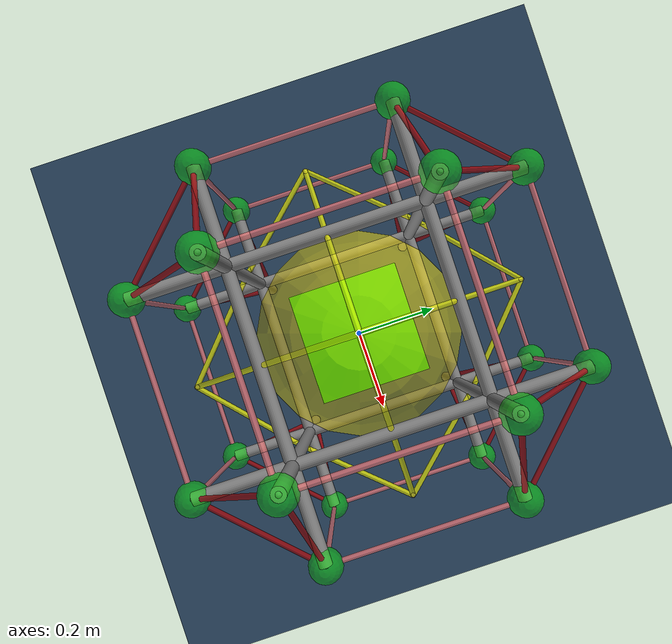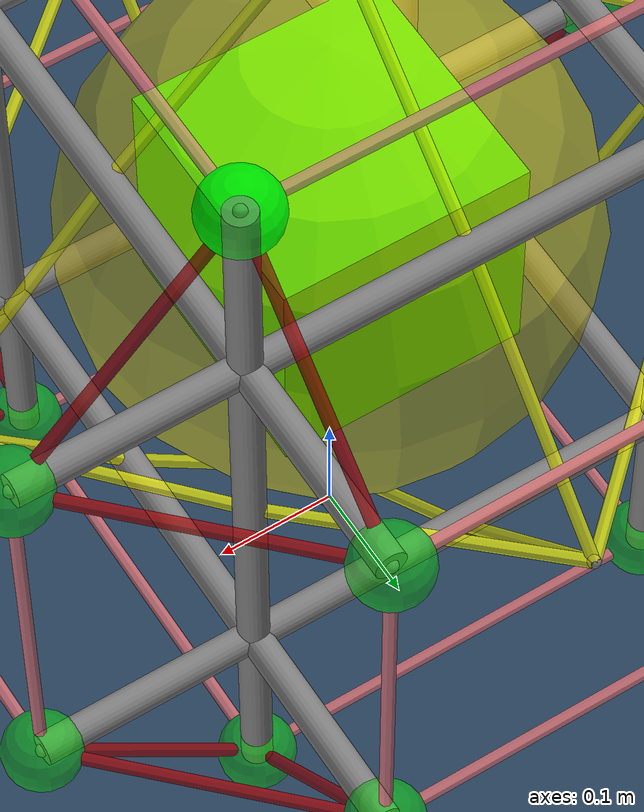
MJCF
<?xml version='1.0' encoding='utf-8'?>
<mujoco model="TT12_environment">
  <compiler autolimits="true" coordinate="local" angle="degree" inertiafromgeom="true" />
  <option timestep="1e-05" gravity="0 0 -10" integrator="Euler">
    <flag override="disable" energy="enable" />
  </option>
  <visual>
    <headlight ambient="0.59999999999999998 0.59999999999999998 0.59999999999999998" diffuse="0.29999999999999999 0.29999999999999999 0.29999999999999999" specular="0.10000000000000001 0.10000000000000001 0.10000000000000001" />
  </visual>
  <default>
    <default class="/">
      <joint type="hinge" damping="0" />
      <geom type="capsule" />
      <site type="sphere" size="0.01" />
      <tendon limited="true" range="0 10" width="0.0050000000000000001" rgba="1 0 0 1" damping="10" />
    </default>
    <default class="tt_model_0/">
      <tendon limited="true" range="0 10" width="0.0050000000000000001" rgba="1 0 0 1" damping="10" />
    </default>
    <default class="tt_model_0/rod0_1/" />
    <default class="tt_model_0/rod2_3/" />
    <default class="tt_model_0/rod4_5/" />
    <default class="tt_model_0/rod6_7/" />
    <default class="tt_model_0/rod8_9/" />
    <default class="tt_model_0/rod10_11/" />
    <default class="tt_model_0/rod12_13/" />
    <default class="tt_model_0/rod14_15/" />
    <default class="tt_model_0/rod16_17/" />
    <default class="tt_model_0/rod18_19/" />
    <default class="tt_model_0/rod20_21/" />
    <default class="tt_model_0/rod22_23/" />
    <default class="tt_model_0/middle_platform/" />
  </default>
  <asset>
    <texture name="skybox" type="skybox" builtin="gradient" rgb1="0.29999999999999999 0.5 0.69999999999999996" rgb2="0 0 0" width="512" height="3072" />
    <texture name="2d" type="2d" builtin="checker" rgb1="0.20000000000000001 0.29999999999999999 0.40000000000000002" rgb2="0.10000000000000001 0.20000000000000001 0.29999999999999999" width="300" height="300" />
    <material name="grid" class="/" texture="2d" texrepeat="5 5" reflectance="0.20000000000000001" />
  </asset>
  <worldbody>
    <geom name="floor" class="/" type="plane" condim="6" priority="1" size="0 0 0.125" material="grid" friction="0.5 0.0050000000000000001 0.0001" solref="-5773.1000000000004 -68.760000000000005" solimp="0.26900000000000002 0.070999999999999994 0.065000000000000002 0.5 2" pos="0 0 0" />
    <light name="light_-2" class="/" pos="-2 -1 3" dir="2 1 -2" />
    <light name="light_2" class="/" pos="2 -1 3" dir="-2 1 -2" />
    <site name="world_site" class="/" pos="0 0 0" />
    <site name="tt_model_0/middle_site_0_1" class="tt_model_0/" rgba="0 0 0 0" pos="0.17499999999999999 0.17499999999999999 0.38" />
    <body pos="0.17499999999999999 0.17499999999999999 0.38" name="tt_model_0/rod0_1/">
      <freejoint name="tt_model_0/rod0_1/" />
      <geom name="tt_model_0/rod0_1/geom0_1" class="tt_model_0/rod0_1/" type="cylinder" size="0.012" mass="0.022499999999999999" fromto="0 0 0.34999999999999998 0 0 -0.34999999999999998" />
      <site name="tt_model_0/rod0_1/node_0" class="tt_model_0/rod0_1/" pos="0 0 0.34999999999999998" />
      <site name="tt_model_0/rod0_1/node_1" class="tt_model_0/rod0_1/" pos="0 0 -0.34999999999999998" />
      <site name="tt_model_0/rod0_1/node_24" class="tt_model_0/rod0_1/" pos="0 0 0" />
      <geom name="tt_model_0/rod0_1/geom_edge_0" class="tt_model_0/rod0_1/" type="sphere" condim="6" size="0.029999999999999999" rgba="0 0.90000000000000002 0 0.5" mass="0.011299999999999999" pos="0 0 0.34999999999999998" />
      <geom name="tt_model_0/rod0_1/geom_edge_1" class="tt_model_0/rod0_1/" type="sphere" condim="6" size="0.029999999999999999" rgba="0 0.90000000000000002 0 0.5" mass="0.011299999999999999" pos="0 0 -0.34999999999999998" />
    </body>
    <site name="tt_model_0/middle_site_2_3" class="tt_model_0/" rgba="0 0 0 0" pos="-0.17499999999999999 0.17499999999999999 0.38" />
    <body pos="-0.17499999999999999 0.17499999999999999 0.38" name="tt_model_0/rod2_3/">
      <freejoint name="tt_model_0/rod2_3/" />
      <geom name="tt_model_0/rod2_3/geom2_3" class="tt_model_0/rod2_3/" type="cylinder" size="0.012" mass="0.022499999999999999" fromto="0 0 0.34999999999999998 0 0 -0.34999999999999998" />
      <site name="tt_model_0/rod2_3/node_2" class="tt_model_0/rod2_3/" pos="0 0 0.34999999999999998" />
      <site name="tt_model_0/rod2_3/node_3" class="tt_model_0/rod2_3/" pos="0 0 -0.34999999999999998" />
      <site name="tt_model_0/rod2_3/node_25" class="tt_model_0/rod2_3/" pos="0 0 0" />
      <geom name="tt_model_0/rod2_3/geom_edge_2" class="tt_model_0/rod2_3/" type="sphere" condim="6" size="0.029999999999999999" rgba="0 0.90000000000000002 0 0.5" mass="0.011299999999999999" pos="0 0 0.34999999999999998" />
      <geom name="tt_model_0/rod2_3/geom_edge_3" class="tt_model_0/rod2_3/" type="sphere" condim="6" size="0.029999999999999999" rgba="0 0.90000000000000002 0 0.5" mass="0.011299999999999999" pos="0 0 -0.34999999999999998" />
    </body>
    <site name="tt_model_0/middle_site_4_5" class="tt_model_0/" rgba="0 0 0 0" pos="-0.17499999999999999 -0.17499999999999999 0.38" />
    <body pos="-0.17499999999999999 -0.17499999999999999 0.38" name="tt_model_0/rod4_5/">
      <freejoint name="tt_model_0/rod4_5/" />
      <geom name="tt_model_0/rod4_5/geom4_5" class="tt_model_0/rod4_5/" type="cylinder" size="0.012" mass="0.022499999999999999" fromto="0 0 0.34999999999999998 0 0 -0.34999999999999998" />
      <site name="tt_model_0/rod4_5/node_4" class="tt_model_0/rod4_5/" pos="0 0 0.34999999999999998" />
      <site name="tt_model_0/rod4_5/node_5" class="tt_model_0/rod4_5/" pos="0 0 -0.34999999999999998" />
      <site name="tt_model_0/rod4_5/node_26" class="tt_model_0/rod4_5/" pos="0 0 0" />
      <geom name="tt_model_0/rod4_5/geom_edge_4" class="tt_model_0/rod4_5/" type="sphere" condim="6" size="0.029999999999999999" rgba="0 0.90000000000000002 0 0.5" mass="0.011299999999999999" pos="0 0 0.34999999999999998" />
      <geom name="tt_model_0/rod4_5/geom_edge_5" class="tt_model_0/rod4_5/" type="sphere" condim="6" size="0.029999999999999999" rgba="0 0.90000000000000002 0 0.5" mass="0.011299999999999999" pos="0 0 -0.34999999999999998" />
    </body>
    <site name="tt_model_0/middle_site_6_7" class="tt_model_0/" rgba="0 0 0 0" pos="0.17499999999999999 -0.17499999999999999 0.38" />
    <body pos="0.17499999999999999 -0.17499999999999999 0.38" name="tt_model_0/rod6_7/">
      <freejoint name="tt_model_0/rod6_7/" />
      <geom name="tt_model_0/rod6_7/geom6_7" class="tt_model_0/rod6_7/" type="cylinder" size="0.012" mass="0.022499999999999999" fromto="0 0 0.34999999999999998 0 0 -0.34999999999999998" />
      <site name="tt_model_0/rod6_7/node_6" class="tt_model_0/rod6_7/" pos="0 0 0.34999999999999998" />
      <site name="tt_model_0/rod6_7/node_7" class="tt_model_0/rod6_7/" pos="0 0 -0.34999999999999998" />
      <site name="tt_model_0/rod6_7/node_27" class="tt_model_0/rod6_7/" pos="0 0 0" />
      <geom name="tt_model_0/rod6_7/geom_edge_6" class="tt_model_0/rod6_7/" type="sphere" condim="6" size="0.029999999999999999" rgba="0 0.90000000000000002 0 0.5" mass="0.011299999999999999" pos="0 0 0.34999999999999998" />
      <geom name="tt_model_0/rod6_7/geom_edge_7" class="tt_model_0/rod6_7/" type="sphere" condim="6" size="0.029999999999999999" rgba="0 0.90000000000000002 0 0.5" mass="0.011299999999999999" pos="0 0 -0.34999999999999998" />
    </body>
    <site name="tt_model_0/middle_site_8_9" class="tt_model_0/" rgba="0 0 0 0" pos="0.17499999999999999 0 0.55499999999999994" />
    <body pos="0.17499999999999999 0 0.55499999999999994" name="tt_model_0/rod8_9/">
      <freejoint name="tt_model_0/rod8_9/" />
      <geom name="tt_model_0/rod8_9/geom8_9" class="tt_model_0/rod8_9/" type="cylinder" size="0.012" mass="0.022499999999999999" fromto="0 0.34999999999999998 0 0 -0.34999999999999998 0" />
      <site name="tt_model_0/rod8_9/node_8" class="tt_model_0/rod8_9/" pos="0 0.34999999999999998 0" />
      <site name="tt_model_0/rod8_9/node_9" class="tt_model_0/rod8_9/" pos="0 -0.34999999999999998 0" />
      <site name="tt_model_0/rod8_9/node_28" class="tt_model_0/rod8_9/" pos="0 0 0" />
      <geom name="tt_model_0/rod8_9/geom_edge_8" class="tt_model_0/rod8_9/" type="sphere" condim="6" size="0.029999999999999999" rgba="0 0.90000000000000002 0 0.5" mass="0.011299999999999999" pos="0 0.34999999999999998 0" />
      <geom name="tt_model_0/rod8_9/geom_edge_9" class="tt_model_0/rod8_9/" type="sphere" condim="6" size="0.029999999999999999" rgba="0 0.90000000000000002 0 0.5" mass="0.011299999999999999" pos="0 -0.34999999999999998 0" />
    </body>
    <site name="tt_model_0/middle_site_10_11" class="tt_model_0/" rgba="0 0 0 0" pos="0.17499999999999999 0 0.20500000000000002" />
    <body pos="0.17499999999999999 0 0.20500000000000002" name="tt_model_0/rod10_11/">
      <freejoint name="tt_model_0/rod10_11/" />
      <geom name="tt_model_0/rod10_11/geom10_11" class="tt_model_0/rod10_11/" type="cylinder" size="0.012" mass="0.022499999999999999" fromto="0 0.34999999999999998 0 0 -0.34999999999999998 0" />
      <site name="tt_model_0/rod10_11/node_10" class="tt_model_0/rod10_11/" pos="0 0.34999999999999998 0" />
      <site name="tt_model_0/rod10_11/node_11" class="tt_model_0/rod10_11/" pos="0 -0.34999999999999998 0" />
      <site name="tt_model_0/rod10_11/node_29" class="tt_model_0/rod10_11/" pos="0 0 0" />
      <geom name="tt_model_0/rod10_11/geom_edge_10" class="tt_model_0/rod10_11/" type="sphere" condim="6" size="0.029999999999999999" rgba="0 0.90000000000000002 0 0.5" mass="0.011299999999999999" pos="0 0.34999999999999998 0" />
      <geom name="tt_model_0/rod10_11/geom_edge_11" class="tt_model_0/rod10_11/" type="sphere" condim="6" size="0.029999999999999999" rgba="0 0.90000000000000002 0 0.5" mass="0.011299999999999999" pos="0 -0.34999999999999998 0" />
    </body>
    <site name="tt_model_0/middle_site_12_13" class="tt_model_0/" rgba="0 0 0 0" pos="-0.17499999999999999 0 0.20500000000000002" />
    <body pos="-0.17499999999999999 0 0.20500000000000002" name="tt_model_0/rod12_13/">
      <freejoint name="tt_model_0/rod12_13/" />
      <geom name="tt_model_0/rod12_13/geom12_13" class="tt_model_0/rod12_13/" type="cylinder" size="0.012" mass="0.022499999999999999" fromto="0 0.34999999999999998 0 0 -0.34999999999999998 0" />
      <site name="tt_model_0/rod12_13/node_12" class="tt_model_0/rod12_13/" pos="0 0.34999999999999998 0" />
      <site name="tt_model_0/rod12_13/node_13" class="tt_model_0/rod12_13/" pos="0 -0.34999999999999998 0" />
      <site name="tt_model_0/rod12_13/node_30" class="tt_model_0/rod12_13/" pos="0 0 0" />
      <geom name="tt_model_0/rod12_13/geom_edge_12" class="tt_model_0/rod12_13/" type="sphere" condim="6" size="0.029999999999999999" rgba="0 0.90000000000000002 0 0.5" mass="0.011299999999999999" pos="0 0.34999999999999998 0" />
      <geom name="tt_model_0/rod12_13/geom_edge_13" class="tt_model_0/rod12_13/" type="sphere" condim="6" size="0.029999999999999999" rgba="0 0.90000000000000002 0 0.5" mass="0.011299999999999999" pos="0 -0.34999999999999998 0" />
    </body>
    <site name="tt_model_0/middle_site_14_15" class="tt_model_0/" rgba="0 0 0 0" pos="-0.17499999999999999 0 0.55499999999999994" />
    <body pos="-0.17499999999999999 0 0.55499999999999994" name="tt_model_0/rod14_15/">
      <freejoint name="tt_model_0/rod14_15/" />
      <geom name="tt_model_0/rod14_15/geom14_15" class="tt_model_0/rod14_15/" type="cylinder" size="0.012" mass="0.022499999999999999" fromto="0 0.34999999999999998 0 0 -0.34999999999999998 0" />
      <site name="tt_model_0/rod14_15/node_14" class="tt_model_0/rod14_15/" pos="0 0.34999999999999998 0" />
      <site name="tt_model_0/rod14_15/node_15" class="tt_model_0/rod14_15/" pos="0 -0.34999999999999998 0" />
      <site name="tt_model_0/rod14_15/node_31" class="tt_model_0/rod14_15/" pos="0 0 0" />
      <geom name="tt_model_0/rod14_15/geom_edge_14" class="tt_model_0/rod14_15/" type="sphere" condim="6" size="0.029999999999999999" rgba="0 0.90000000000000002 0 0.5" mass="0.011299999999999999" pos="0 0.34999999999999998 0" />
      <geom name="tt_model_0/rod14_15/geom_edge_15" class="tt_model_0/rod14_15/" type="sphere" condim="6" size="0.029999999999999999" rgba="0 0.90000000000000002 0 0.5" mass="0.011299999999999999" pos="0 -0.34999999999999998 0" />
    </body>
    <site name="tt_model_0/middle_site_16_17" class="tt_model_0/" rgba="0 0 0 0" pos="0 0.17499999999999999 0.55499999999999994" />
    <body pos="0 0.17499999999999999 0.55499999999999994" name="tt_model_0/rod16_17/">
      <freejoint name="tt_model_0/rod16_17/" />
      <geom name="tt_model_0/rod16_17/geom16_17" class="tt_model_0/rod16_17/" type="cylinder" size="0.012" mass="0.022499999999999999" fromto="0.34999999999999998 0 0 -0.34999999999999998 0 0" />
      <site name="tt_model_0/rod16_17/node_16" class="tt_model_0/rod16_17/" pos="0.34999999999999998 0 0" />
      <site name="tt_model_0/rod16_17/node_17" class="tt_model_0/rod16_17/" pos="-0.34999999999999998 0 0" />
      <site name="tt_model_0/rod16_17/node_32" class="tt_model_0/rod16_17/" pos="0 0 0" />
      <geom name="tt_model_0/rod16_17/geom_edge_16" class="tt_model_0/rod16_17/" type="sphere" condim="6" size="0.029999999999999999" rgba="0 0.90000000000000002 0 0.5" mass="0.011299999999999999" pos="0.34999999999999998 0 0" />
      <geom name="tt_model_0/rod16_17/geom_edge_17" class="tt_model_0/rod16_17/" type="sphere" condim="6" size="0.029999999999999999" rgba="0 0.90000000000000002 0 0.5" mass="0.011299999999999999" pos="-0.34999999999999998 0 0" />
    </body>
    <site name="tt_model_0/middle_site_18_19" class="tt_model_0/" rgba="0 0 0 0" pos="0 -0.17499999999999999 0.55499999999999994" />
    <body pos="0 -0.17499999999999999 0.55499999999999994" name="tt_model_0/rod18_19/">
      <freejoint name="tt_model_0/rod18_19/" />
      <geom name="tt_model_0/rod18_19/geom18_19" class="tt_model_0/rod18_19/" type="cylinder" size="0.012" mass="0.022499999999999999" fromto="0.34999999999999998 0 0 -0.34999999999999998 0 0" />
      <site name="tt_model_0/rod18_19/node_18" class="tt_model_0/rod18_19/" pos="0.34999999999999998 0 0" />
      <site name="tt_model_0/rod18_19/node_19" class="tt_model_0/rod18_19/" pos="-0.34999999999999998 0 0" />
      <site name="tt_model_0/rod18_19/node_33" class="tt_model_0/rod18_19/" pos="0 0 0" />
      <geom name="tt_model_0/rod18_19/geom_edge_18" class="tt_model_0/rod18_19/" type="sphere" condim="6" size="0.029999999999999999" rgba="0 0.90000000000000002 0 0.5" mass="0.011299999999999999" pos="0.34999999999999998 0 0" />
      <geom name="tt_model_0/rod18_19/geom_edge_19" class="tt_model_0/rod18_19/" type="sphere" condim="6" size="0.029999999999999999" rgba="0 0.90000000000000002 0 0.5" mass="0.011299999999999999" pos="-0.34999999999999998 0 0" />
    </body>
    <site name="tt_model_0/middle_site_20_21" class="tt_model_0/" rgba="0 0 0 0" pos="0 -0.17499999999999999 0.20500000000000002" />
    <body pos="0 -0.17499999999999999 0.20500000000000002" name="tt_model_0/rod20_21/">
      <freejoint name="tt_model_0/rod20_21/" />
      <geom name="tt_model_0/rod20_21/geom20_21" class="tt_model_0/rod20_21/" type="cylinder" size="0.012" mass="0.022499999999999999" fromto="0.34999999999999998 0 0 -0.34999999999999998 0 0" />
      <site name="tt_model_0/rod20_21/node_20" class="tt_model_0/rod20_21/" pos="0.34999999999999998 0 0" />
      <site name="tt_model_0/rod20_21/node_21" class="tt_model_0/rod20_21/" pos="-0.34999999999999998 0 0" />
      <site name="tt_model_0/rod20_21/node_34" class="tt_model_0/rod20_21/" pos="0 0 0" />
      <geom name="tt_model_0/rod20_21/geom_edge_20" class="tt_model_0/rod20_21/" type="sphere" condim="6" size="0.029999999999999999" rgba="0 0.90000000000000002 0 0.5" mass="0.011299999999999999" pos="0.34999999999999998 0 0" />
      <geom name="tt_model_0/rod20_21/geom_edge_21" class="tt_model_0/rod20_21/" type="sphere" condim="6" size="0.029999999999999999" rgba="0 0.90000000000000002 0 0.5" mass="0.011299999999999999" pos="-0.34999999999999998 0 0" />
    </body>
    <site name="tt_model_0/middle_site_22_23" class="tt_model_0/" rgba="0 0 0 0" pos="0 0.17499999999999999 0.20500000000000002" />
    <body pos="0 0.17499999999999999 0.20500000000000002" name="tt_model_0/rod22_23/">
      <freejoint name="tt_model_0/rod22_23/" />
      <geom name="tt_model_0/rod22_23/geom22_23" class="tt_model_0/rod22_23/" type="cylinder" size="0.012" mass="0.022499999999999999" fromto="0.34999999999999998 0 0 -0.34999999999999998 0 0" />
      <site name="tt_model_0/rod22_23/node_22" class="tt_model_0/rod22_23/" pos="0.34999999999999998 0 0" />
      <site name="tt_model_0/rod22_23/node_23" class="tt_model_0/rod22_23/" pos="-0.34999999999999998 0 0" />
      <site name="tt_model_0/rod22_23/node_35" class="tt_model_0/rod22_23/" pos="0 0 0" />
      <geom name="tt_model_0/rod22_23/geom_edge_22" class="tt_model_0/rod22_23/" type="sphere" condim="6" size="0.029999999999999999" rgba="0 0.90000000000000002 0 0.5" mass="0.011299999999999999" pos="0.34999999999999998 0 0" />
      <geom name="tt_model_0/rod22_23/geom_edge_23" class="tt_model_0/rod22_23/" type="sphere" condim="6" size="0.029999999999999999" rgba="0 0.90000000000000002 0 0.5" mass="0.011299999999999999" pos="-0.34999999999999998 0 0" />
    </body>
    <site name="tt_model_0/middle_element_site" class="tt_model_0/" rgba="0 0 0 0" pos="0 0 0.38" />
    <body pos="0 0 0.38" name="tt_model_0/middle_platform/">
      <freejoint name="tt_model_0/middle_platform/" />
      <inertial pos="0 0 0" mass="0.69999999999999996" diaginertia="0.02 0.02 0.02" />
      <site name="tt_model_0/middle_platform/node_41" class="tt_model_0/middle_platform/" pos="0 0 0.33500000000000008" />
      <site name="tt_model_0/middle_platform/node_38" class="tt_model_0/middle_platform/" pos="-0.33500000000000002 0 0" />
      <site name="tt_model_0/middle_platform/node_40" class="tt_model_0/middle_platform/" pos="0 -0.33500000000000002 0" />
      <site name="tt_model_0/middle_platform/node_39" class="tt_model_0/middle_platform/" pos="0 0.33500000000000002 0" />
      <site name="tt_model_0/middle_platform/node_37" class="tt_model_0/middle_platform/" pos="0.33500000000000002 0 0" />
      <site name="tt_model_0/middle_platform/node_42" class="tt_model_0/middle_platform/" pos="0 0 -0.33500000000000002" />
      <site name="tt_model_0/middle_platform/outside_site" class="tt_model_0/middle_platform/" rgba="1 0.90000000000000002 0 0.5" size="0.20000000000000001" pos="0 0 0" />
      <body name="tt_model_0/middle_platform/inside_ball" pos="0 0 0">
        <inertial pos="0 0 0" mass="6.5999999999999996" diaginertia="0.12 0.12 0.12" />
        <joint name="tt_model_0/middle_platform/x_control" class="tt_model_0/middle_platform/" type="hinge" axis="1 0 0" />
        <joint name="tt_model_0/middle_platform/y_control" class="tt_model_0/middle_platform/" type="hinge" axis="0 1 0" />
        <joint name="tt_model_0/middle_platform/z_control" class="tt_model_0/middle_platform/" type="hinge" axis="0 0 1" />
        <site name="tt_model_0/middle_platform/inside_site" class="tt_model_0/middle_platform/" type="box" rgba="0 0.90000000000000002 0 1" size="0.10000000000000001 0.10000000000000001 0.10000000000000001" pos="0 0 0" />
      </body>
    </body>
  </worldbody>
  <contact>
    <exclude name="tt_model_0/exclude_rod0_1_rod2_3" body1="tt_model_0/rod0_1/" body2="tt_model_0/rod2_3/" />
    <exclude name="tt_model_0/exclude_rod0_1_rod4_5" body1="tt_model_0/rod0_1/" body2="tt_model_0/rod4_5/" />
    <exclude name="tt_model_0/exclude_rod0_1_rod6_7" body1="tt_model_0/rod0_1/" body2="tt_model_0/rod6_7/" />
    <exclude name="tt_model_0/exclude_rod0_1_rod8_9" body1="tt_model_0/rod0_1/" body2="tt_model_0/rod8_9/" />
    <exclude name="tt_model_0/exclude_rod0_1_rod10_11" body1="tt_model_0/rod0_1/" body2="tt_model_0/rod10_11/" />
    <exclude name="tt_model_0/exclude_rod0_1_rod12_13" body1="tt_model_0/rod0_1/" body2="tt_model_0/rod12_13/" />
    <exclude name="tt_model_0/exclude_rod0_1_rod14_15" body1="tt_model_0/rod0_1/" body2="tt_model_0/rod14_15/" />
    <exclude name="tt_model_0/exclude_rod0_1_rod16_17" body1="tt_model_0/rod0_1/" body2="tt_model_0/rod16_17/" />
    <exclude name="tt_model_0/exclude_rod0_1_rod18_19" body1="tt_model_0/rod0_1/" body2="tt_model_0/rod18_19/" />
    <exclude name="tt_model_0/exclude_rod0_1_rod20_21" body1="tt_model_0/rod0_1/" body2="tt_model_0/rod20_21/" />
    <exclude name="tt_model_0/exclude_rod0_1_rod22_23" body1="tt_model_0/rod0_1/" body2="tt_model_0/rod22_23/" />
    <exclude name="tt_model_0/exclude_rod2_3_rod4_5" body1="tt_model_0/rod2_3/" body2="tt_model_0/rod4_5/" />
    <exclude name="tt_model_0/exclude_rod2_3_rod6_7" body1="tt_model_0/rod2_3/" body2="tt_model_0/rod6_7/" />
    <exclude name="tt_model_0/exclude_rod2_3_rod8_9" body1="tt_model_0/rod2_3/" body2="tt_model_0/rod8_9/" />
    <exclude name="tt_model_0/exclude_rod2_3_rod10_11" body1="tt_model_0/rod2_3/" body2="tt_model_0/rod10_11/" />
    <exclude name="tt_model_0/exclude_rod2_3_rod12_13" body1="tt_model_0/rod2_3/" body2="tt_model_0/rod12_13/" />
    <exclude name="tt_model_0/exclude_rod2_3_rod14_15" body1="tt_model_0/rod2_3/" body2="tt_model_0/rod14_15/" />
    <exclude name="tt_model_0/exclude_rod2_3_rod16_17" body1="tt_model_0/rod2_3/" body2="tt_model_0/rod16_17/" />
    <exclude name="tt_model_0/exclude_rod2_3_rod18_19" body1="tt_model_0/rod2_3/" body2="tt_model_0/rod18_19/" />
    <exclude name="tt_model_0/exclude_rod2_3_rod20_21" body1="tt_model_0/rod2_3/" body2="tt_model_0/rod20_21/" />
    <exclude name="tt_model_0/exclude_rod2_3_rod22_23" body1="tt_model_0/rod2_3/" body2="tt_model_0/rod22_23/" />
    <exclude name="tt_model_0/exclude_rod4_5_rod6_7" body1="tt_model_0/rod4_5/" body2="tt_model_0/rod6_7/" />
    <exclude name="tt_model_0/exclude_rod4_5_rod8_9" body1="tt_model_0/rod4_5/" body2="tt_model_0/rod8_9/" />
    <exclude name="tt_model_0/exclude_rod4_5_rod10_11" body1="tt_model_0/rod4_5/" body2="tt_model_0/rod10_11/" />
    <exclude name="tt_model_0/exclude_rod4_5_rod12_13" body1="tt_model_0/rod4_5/" body2="tt_model_0/rod12_13/" />
    <exclude name="tt_model_0/exclude_rod4_5_rod14_15" body1="tt_model_0/rod4_5/" body2="tt_model_0/rod14_15/" />
    <exclude name="tt_model_0/exclude_rod4_5_rod16_17" body1="tt_model_0/rod4_5/" body2="tt_model_0/rod16_17/" />
    <exclude name="tt_model_0/exclude_rod4_5_rod18_19" body1="tt_model_0/rod4_5/" body2="tt_model_0/rod18_19/" />
    <exclude name="tt_model_0/exclude_rod4_5_rod20_21" body1="tt_model_0/rod4_5/" body2="tt_model_0/rod20_21/" />
    <exclude name="tt_model_0/exclude_rod4_5_rod22_23" body1="tt_model_0/rod4_5/" body2="tt_model_0/rod22_23/" />
    <exclude name="tt_model_0/exclude_rod6_7_rod8_9" body1="tt_model_0/rod6_7/" body2="tt_model_0/rod8_9/" />
    <exclude name="tt_model_0/exclude_rod6_7_rod10_11" body1="tt_model_0/rod6_7/" body2="tt_model_0/rod10_11/" />
    <exclude name="tt_model_0/exclude_rod6_7_rod12_13" body1="tt_model_0/rod6_7/" body2="tt_model_0/rod12_13/" />
    <exclude name="tt_model_0/exclude_rod6_7_rod14_15" body1="tt_model_0/rod6_7/" body2="tt_model_0/rod14_15/" />
    <exclude name="tt_model_0/exclude_rod6_7_rod16_17" body1="tt_model_0/rod6_7/" body2="tt_model_0/rod16_17/" />
    <exclude name="tt_model_0/exclude_rod6_7_rod18_19" body1="tt_model_0/rod6_7/" body2="tt_model_0/rod18_19/" />
    <exclude name="tt_model_0/exclude_rod6_7_rod20_21" body1="tt_model_0/rod6_7/" body2="tt_model_0/rod20_21/" />
    <exclude name="tt_model_0/exclude_rod6_7_rod22_23" body1="tt_model_0/rod6_7/" body2="tt_model_0/rod22_23/" />
    <exclude name="tt_model_0/exclude_rod8_9_rod10_11" body1="tt_model_0/rod8_9/" body2="tt_model_0/rod10_11/" />
    <exclude name="tt_model_0/exclude_rod8_9_rod12_13" body1="tt_model_0/rod8_9/" body2="tt_model_0/rod12_13/" />
    <exclude name="tt_model_0/exclude_rod8_9_rod14_15" body1="tt_model_0/rod8_9/" body2="tt_model_0/rod14_15/" />
    <exclude name="tt_model_0/exclude_rod8_9_rod16_17" body1="tt_model_0/rod8_9/" body2="tt_model_0/rod16_17/" />
    <exclude name="tt_model_0/exclude_rod8_9_rod18_19" body1="tt_model_0/rod8_9/" body2="tt_model_0/rod18_19/" />
    <exclude name="tt_model_0/exclude_rod8_9_rod20_21" body1="tt_model_0/rod8_9/" body2="tt_model_0/rod20_21/" />
    <exclude name="tt_model_0/exclude_rod8_9_rod22_23" body1="tt_model_0/rod8_9/" body2="tt_model_0/rod22_23/" />
    <exclude name="tt_model_0/exclude_rod10_11_rod12_13" body1="tt_model_0/rod10_11/" body2="tt_model_0/rod12_13/" />
    <exclude name="tt_model_0/exclude_rod10_11_rod14_15" body1="tt_model_0/rod10_11/" body2="tt_model_0/rod14_15/" />
    <exclude name="tt_model_0/exclude_rod10_11_rod16_17" body1="tt_model_0/rod10_11/" body2="tt_model_0/rod16_17/" />
    <exclude name="tt_model_0/exclude_rod10_11_rod18_19" body1="tt_model_0/rod10_11/" body2="tt_model_0/rod18_19/" />
    <exclude name="tt_model_0/exclude_rod10_11_rod20_21" body1="tt_model_0/rod10_11/" body2="tt_model_0/rod20_21/" />
    <exclude name="tt_model_0/exclude_rod10_11_rod22_23" body1="tt_model_0/rod10_11/" body2="tt_model_0/rod22_23/" />
    <exclude name="tt_model_0/exclude_rod12_13_rod14_15" body1="tt_model_0/rod12_13/" body2="tt_model_0/rod14_15/" />
    <exclude name="tt_model_0/exclude_rod12_13_rod16_17" body1="tt_model_0/rod12_13/" body2="tt_model_0/rod16_17/" />
    <exclude name="tt_model_0/exclude_rod12_13_rod18_19" body1="tt_model_0/rod12_13/" body2="tt_model_0/rod18_19/" />
    <exclude name="tt_model_0/exclude_rod12_13_rod20_21" body1="tt_model_0/rod12_13/" body2="tt_model_0/rod20_21/" />
    <exclude name="tt_model_0/exclude_rod12_13_rod22_23" body1="tt_model_0/rod12_13/" body2="tt_model_0/rod22_23/" />
    <exclude name="tt_model_0/exclude_rod14_15_rod16_17" body1="tt_model_0/rod14_15/" body2="tt_model_0/rod16_17/" />
    <exclude name="tt_model_0/exclude_rod14_15_rod18_19" body1="tt_model_0/rod14_15/" body2="tt_model_0/rod18_19/" />
    <exclude name="tt_model_0/exclude_rod14_15_rod20_21" body1="tt_model_0/rod14_15/" body2="tt_model_0/rod20_21/" />
    <exclude name="tt_model_0/exclude_rod14_15_rod22_23" body1="tt_model_0/rod14_15/" body2="tt_model_0/rod22_23/" />
    <exclude name="tt_model_0/exclude_rod16_17_rod18_19" body1="tt_model_0/rod16_17/" body2="tt_model_0/rod18_19/" />
    <exclude name="tt_model_0/exclude_rod16_17_rod20_21" body1="tt_model_0/rod16_17/" body2="tt_model_0/rod20_21/" />
    <exclude name="tt_model_0/exclude_rod16_17_rod22_23" body1="tt_model_0/rod16_17/" body2="tt_model_0/rod22_23/" />
    <exclude name="tt_model_0/exclude_rod18_19_rod20_21" body1="tt_model_0/rod18_19/" body2="tt_model_0/rod20_21/" />
    <exclude name="tt_model_0/exclude_rod18_19_rod22_23" body1="tt_model_0/rod18_19/" body2="tt_model_0/rod22_23/" />
    <exclude name="tt_model_0/exclude_rod20_21_rod22_23" body1="tt_model_0/rod20_21/" body2="tt_model_0/rod22_23/" />
  </contact>
  <tendon>
    <spatial name="tt_model_0/td0_2" class="tt_model_0/" rgba="1 0.5 0.5 0.69999999999999996" springlength="0.22029831387808038" stiffness="771">
      <site site="tt_model_0/rod0_1/node_0" />
      <site site="tt_model_0/rod2_3/node_2" />
    </spatial>
    <spatial name="tt_model_0/td2_4" class="tt_model_0/" rgba="1 0.5 0.5 0.69999999999999996" springlength="0.22029831387808038" stiffness="771">
      <site site="tt_model_0/rod2_3/node_2" />
      <site site="tt_model_0/rod4_5/node_4" />
    </spatial>
    <spatial name="tt_model_0/td4_6" class="tt_model_0/" rgba="1 0.5 0.5 0.69999999999999996" springlength="0.22029831387808038" stiffness="771">
      <site site="tt_model_0/rod4_5/node_4" />
      <site site="tt_model_0/rod6_7/node_6" />
    </spatial>
    <spatial name="tt_model_0/td6_0" class="tt_model_0/" rgba="1 0.5 0.5 0.69999999999999996" springlength="0.22029831387808038" stiffness="771">
      <site site="tt_model_0/rod6_7/node_6" />
      <site site="tt_model_0/rod0_1/node_0" />
    </spatial>
    <spatial name="tt_model_0/td1_3" class="tt_model_0/" rgba="1 0.5 0.5 0.69999999999999996" springlength="0.22029831387808038" stiffness="771">
      <site site="tt_model_0/rod0_1/node_1" />
      <site site="tt_model_0/rod2_3/node_3" />
    </spatial>
    <spatial name="tt_model_0/td3_5" class="tt_model_0/" rgba="1 0.5 0.5 0.69999999999999996" springlength="0.22029831387808038" stiffness="771">
      <site site="tt_model_0/rod2_3/node_3" />
      <site site="tt_model_0/rod4_5/node_5" />
    </spatial>
    <spatial name="tt_model_0/td5_7" class="tt_model_0/" rgba="1 0.5 0.5 0.69999999999999996" springlength="0.22029831387808038" stiffness="771">
      <site site="tt_model_0/rod4_5/node_5" />
      <site site="tt_model_0/rod6_7/node_7" />
    </spatial>
    <spatial name="tt_model_0/td7_1" class="tt_model_0/" rgba="1 0.5 0.5 0.69999999999999996" springlength="0.22029831387808038" stiffness="771">
      <site site="tt_model_0/rod6_7/node_7" />
      <site site="tt_model_0/rod0_1/node_1" />
    </spatial>
    <spatial name="tt_model_0/td8_10" class="tt_model_0/" rgba="1 0.5 0.5 0.69999999999999996" springlength="0.22029831387808038" stiffness="771">
      <site site="tt_model_0/rod8_9/node_8" />
      <site site="tt_model_0/rod10_11/node_10" />
    </spatial>
    <spatial name="tt_model_0/td10_12" class="tt_model_0/" rgba="1 0.5 0.5 0.69999999999999996" springlength="0.22029831387808038" stiffness="771">
      <site site="tt_model_0/rod10_11/node_10" />
      <site site="tt_model_0/rod12_13/node_12" />
    </spatial>
    <spatial name="tt_model_0/td12_14" class="tt_model_0/" rgba="1 0.5 0.5 0.69999999999999996" springlength="0.22029831387808038" stiffness="771">
      <site site="tt_model_0/rod12_13/node_12" />
      <site site="tt_model_0/rod14_15/node_14" />
    </spatial>
    <spatial name="tt_model_0/td14_8" class="tt_model_0/" rgba="1 0.5 0.5 0.69999999999999996" springlength="0.22029831387808038" stiffness="771">
      <site site="tt_model_0/rod14_15/node_14" />
      <site site="tt_model_0/rod8_9/node_8" />
    </spatial>
    <spatial name="tt_model_0/td9_11" class="tt_model_0/" rgba="1 0.5 0.5 0.69999999999999996" springlength="0.22029831387808038" stiffness="771">
      <site site="tt_model_0/rod8_9/node_9" />
      <site site="tt_model_0/rod10_11/node_11" />
    </spatial>
    <spatial name="tt_model_0/td11_13" class="tt_model_0/" rgba="1 0.5 0.5 0.69999999999999996" springlength="0.22029831387808038" stiffness="771">
      <site site="tt_model_0/rod10_11/node_11" />
      <site site="tt_model_0/rod12_13/node_13" />
    </spatial>
    <spatial name="tt_model_0/td13_15" class="tt_model_0/" rgba="1 0.5 0.5 0.69999999999999996" springlength="0.22029831387808038" stiffness="771">
      <site site="tt_model_0/rod12_13/node_13" />
      <site site="tt_model_0/rod14_15/node_15" />
    </spatial>
    <spatial name="tt_model_0/td15_9" class="tt_model_0/" rgba="1 0.5 0.5 0.69999999999999996" springlength="0.22029831387808038" stiffness="771">
      <site site="tt_model_0/rod14_15/node_15" />
      <site site="tt_model_0/rod8_9/node_9" />
    </spatial>
    <spatial name="tt_model_0/td16_18" class="tt_model_0/" rgba="1 0.5 0.5 0.69999999999999996" springlength="0.22029831387808038" stiffness="771">
      <site site="tt_model_0/rod16_17/node_16" />
      <site site="tt_model_0/rod18_19/node_18" />
    </spatial>
    <spatial name="tt_model_0/td18_20" class="tt_model_0/" rgba="1 0.5 0.5 0.69999999999999996" springlength="0.22029831387808038" stiffness="771">
      <site site="tt_model_0/rod18_19/node_18" />
      <site site="tt_model_0/rod20_21/node_20" />
    </spatial>
    <spatial name="tt_model_0/td20_22" class="tt_model_0/" rgba="1 0.5 0.5 0.69999999999999996" springlength="0.22029831387808038" stiffness="771">
      <site site="tt_model_0/rod20_21/node_20" />
      <site site="tt_model_0/rod22_23/node_22" />
    </spatial>
    <spatial name="tt_model_0/td22_16" class="tt_model_0/" rgba="1 0.5 0.5 0.69999999999999996" springlength="0.22029831387808038" stiffness="771">
      <site site="tt_model_0/rod22_23/node_22" />
      <site site="tt_model_0/rod16_17/node_16" />
    </spatial>
    <spatial name="tt_model_0/td17_19" class="tt_model_0/" rgba="1 0.5 0.5 0.69999999999999996" springlength="0.22029831387808038" stiffness="771">
      <site site="tt_model_0/rod16_17/node_17" />
      <site site="tt_model_0/rod18_19/node_19" />
    </spatial>
    <spatial name="tt_model_0/td19_21" class="tt_model_0/" rgba="1 0.5 0.5 0.69999999999999996" springlength="0.22029831387808038" stiffness="771">
      <site site="tt_model_0/rod18_19/node_19" />
      <site site="tt_model_0/rod20_21/node_21" />
    </spatial>
    <spatial name="tt_model_0/td21_23" class="tt_model_0/" rgba="1 0.5 0.5 0.69999999999999996" springlength="0.22029831387808038" stiffness="771">
      <site site="tt_model_0/rod20_21/node_21" />
      <site site="tt_model_0/rod22_23/node_23" />
    </spatial>
    <spatial name="tt_model_0/td23_17" class="tt_model_0/" rgba="1 0.5 0.5 0.69999999999999996" springlength="0.22029831387808038" stiffness="771">
      <site site="tt_model_0/rod22_23/node_23" />
      <site site="tt_model_0/rod16_17/node_17" />
    </spatial>
    <spatial name="tt_model_0/td0_16" class="tt_model_0/" rgba="0.69999999999999996 0 0 0.69999999999999996" springlength="0.10248737341529165" stiffness="2000">
      <site site="tt_model_0/rod0_1/node_0" />
      <site site="tt_model_0/rod16_17/node_16" />
    </spatial>
    <spatial name="tt_model_0/td2_17" class="tt_model_0/" rgba="0.69999999999999996 0 0 0.69999999999999996" springlength="0.10248737341529165" stiffness="2000">
      <site site="tt_model_0/rod2_3/node_2" />
      <site site="tt_model_0/rod16_17/node_17" />
    </spatial>
    <spatial name="tt_model_0/td4_19" class="tt_model_0/" rgba="0.69999999999999996 0 0 0.69999999999999996" springlength="0.10248737341529165" stiffness="2000">
      <site site="tt_model_0/rod4_5/node_4" />
      <site site="tt_model_0/rod18_19/node_19" />
    </spatial>
    <spatial name="tt_model_0/td6_18" class="tt_model_0/" rgba="0.69999999999999996 0 0 0.69999999999999996" springlength="0.10248737341529165" stiffness="2000">
      <site site="tt_model_0/rod6_7/node_6" />
      <site site="tt_model_0/rod18_19/node_18" />
    </spatial>
    <spatial name="tt_model_0/td1_22" class="tt_model_0/" rgba="0.69999999999999996 0 0 0.69999999999999996" springlength="0.10248737341529165" stiffness="2000">
      <site site="tt_model_0/rod0_1/node_1" />
      <site site="tt_model_0/rod22_23/node_22" />
    </spatial>
    <spatial name="tt_model_0/td3_23" class="tt_model_0/" rgba="0.69999999999999996 0 0 0.69999999999999996" springlength="0.10248737341529165" stiffness="2000">
      <site site="tt_model_0/rod2_3/node_3" />
      <site site="tt_model_0/rod22_23/node_23" />
    </spatial>
    <spatial name="tt_model_0/td5_21" class="tt_model_0/" rgba="0.69999999999999996 0 0 0.69999999999999996" springlength="0.10248737341529165" stiffness="2000">
      <site site="tt_model_0/rod4_5/node_5" />
      <site site="tt_model_0/rod20_21/node_21" />
    </spatial>
    <spatial name="tt_model_0/td7_20" class="tt_model_0/" rgba="0.69999999999999996 0 0 0.69999999999999996" springlength="0.10248737341529165" stiffness="2000">
      <site site="tt_model_0/rod6_7/node_7" />
      <site site="tt_model_0/rod20_21/node_20" />
    </spatial>
    <spatial name="tt_model_0/td8_0" class="tt_model_0/" rgba="0.69999999999999996 0 0 0.69999999999999996" springlength="0.10248737341529165" stiffness="2000">
      <site site="tt_model_0/rod8_9/node_8" />
      <site site="tt_model_0/rod0_1/node_0" />
    </spatial>
    <spatial name="tt_model_0/td8_16" class="tt_model_0/" rgba="0.69999999999999996 0 0 0.69999999999999996" springlength="0.10248737341529165" stiffness="2000">
      <site site="tt_model_0/rod8_9/node_8" />
      <site site="tt_model_0/rod16_17/node_16" />
    </spatial>
    <spatial name="tt_model_0/td9_6" class="tt_model_0/" rgba="0.69999999999999996 0 0 0.69999999999999996" springlength="0.10248737341529165" stiffness="2000">
      <site site="tt_model_0/rod8_9/node_9" />
      <site site="tt_model_0/rod6_7/node_6" />
    </spatial>
    <spatial name="tt_model_0/td9_18" class="tt_model_0/" rgba="0.69999999999999996 0 0 0.69999999999999996" springlength="0.10248737341529165" stiffness="2000">
      <site site="tt_model_0/rod8_9/node_9" />
      <site site="tt_model_0/rod18_19/node_18" />
    </spatial>
    <spatial name="tt_model_0/td10_1" class="tt_model_0/" rgba="0.69999999999999996 0 0 0.69999999999999996" springlength="0.10248737341529165" stiffness="2000">
      <site site="tt_model_0/rod10_11/node_10" />
      <site site="tt_model_0/rod0_1/node_1" />
    </spatial>
    <spatial name="tt_model_0/td10_22" class="tt_model_0/" rgba="0.69999999999999996 0 0 0.69999999999999996" springlength="0.10248737341529165" stiffness="2000">
      <site site="tt_model_0/rod10_11/node_10" />
      <site site="tt_model_0/rod22_23/node_22" />
    </spatial>
    <spatial name="tt_model_0/td11_7" class="tt_model_0/" rgba="0.69999999999999996 0 0 0.69999999999999996" springlength="0.10248737341529165" stiffness="2000">
      <site site="tt_model_0/rod10_11/node_11" />
      <site site="tt_model_0/rod6_7/node_7" />
    </spatial>
    <spatial name="tt_model_0/td11_20" class="tt_model_0/" rgba="0.69999999999999996 0 0 0.69999999999999996" springlength="0.10248737341529165" stiffness="2000">
      <site site="tt_model_0/rod10_11/node_11" />
      <site site="tt_model_0/rod20_21/node_20" />
    </spatial>
    <spatial name="tt_model_0/td12_3" class="tt_model_0/" rgba="0.69999999999999996 0 0 0.69999999999999996" springlength="0.10248737341529165" stiffness="2000">
      <site site="tt_model_0/rod12_13/node_12" />
      <site site="tt_model_0/rod2_3/node_3" />
    </spatial>
    <spatial name="tt_model_0/td12_23" class="tt_model_0/" rgba="0.69999999999999996 0 0 0.69999999999999996" springlength="0.10248737341529165" stiffness="2000">
      <site site="tt_model_0/rod12_13/node_12" />
      <site site="tt_model_0/rod22_23/node_23" />
    </spatial>
    <spatial name="tt_model_0/td13_5" class="tt_model_0/" rgba="0.69999999999999996 0 0 0.69999999999999996" springlength="0.10248737341529165" stiffness="2000">
      <site site="tt_model_0/rod12_13/node_13" />
      <site site="tt_model_0/rod4_5/node_5" />
    </spatial>
    <spatial name="tt_model_0/td13_21" class="tt_model_0/" rgba="0.69999999999999996 0 0 0.69999999999999996" springlength="0.10248737341529165" stiffness="2000">
      <site site="tt_model_0/rod12_13/node_13" />
      <site site="tt_model_0/rod20_21/node_21" />
    </spatial>
    <spatial name="tt_model_0/td14_2" class="tt_model_0/" rgba="0.69999999999999996 0 0 0.69999999999999996" springlength="0.10248737341529165" stiffness="2000">
      <site site="tt_model_0/rod14_15/node_14" />
      <site site="tt_model_0/rod2_3/node_2" />
    </spatial>
    <spatial name="tt_model_0/td14_17" class="tt_model_0/" rgba="0.69999999999999996 0 0 0.69999999999999996" springlength="0.10248737341529165" stiffness="2000">
      <site site="tt_model_0/rod14_15/node_14" />
      <site site="tt_model_0/rod16_17/node_17" />
    </spatial>
    <spatial name="tt_model_0/td15_4" class="tt_model_0/" rgba="0.69999999999999996 0 0 0.69999999999999996" springlength="0.10248737341529165" stiffness="2000">
      <site site="tt_model_0/rod14_15/node_15" />
      <site site="tt_model_0/rod4_5/node_4" />
    </spatial>
    <spatial name="tt_model_0/td15_19" class="tt_model_0/" rgba="0.69999999999999996 0 0 0.69999999999999996" springlength="0.10248737341529165" stiffness="2000">
      <site site="tt_model_0/rod14_15/node_15" />
      <site site="tt_model_0/rod18_19/node_19" />
    </spatial>
    <spatial name="tt_model_0/td24_37" class="tt_model_0/" rgba="1 1 0 0.69999999999999996" springlength="0.18754227672439913" stiffness="67000">
      <site site="tt_model_0/rod0_1/node_24" />
      <site site="tt_model_0/middle_platform/node_37" />
    </spatial>
    <spatial name="tt_model_0/td28_37" class="tt_model_0/" rgba="1 1 0 0.69999999999999996" springlength="0.18754227672439913" stiffness="67000">
      <site site="tt_model_0/rod8_9/node_28" />
      <site site="tt_model_0/middle_platform/node_37" />
    </spatial>
    <spatial name="tt_model_0/td27_37" class="tt_model_0/" rgba="1 1 0 0.69999999999999996" springlength="0.18754227672439913" stiffness="67000">
      <site site="tt_model_0/rod6_7/node_27" />
      <site site="tt_model_0/middle_platform/node_37" />
    </spatial>
    <spatial name="tt_model_0/td29_37" class="tt_model_0/" rgba="1 1 0 0.69999999999999996" springlength="0.18754227672439913" stiffness="67000">
      <site site="tt_model_0/rod10_11/node_29" />
      <site site="tt_model_0/middle_platform/node_37" />
    </spatial>
    <spatial name="tt_model_0/td25_38" class="tt_model_0/" rgba="1 1 0 0.69999999999999996" springlength="0.18754227672439913" stiffness="67000">
      <site site="tt_model_0/rod2_3/node_25" />
      <site site="tt_model_0/middle_platform/node_38" />
    </spatial>
    <spatial name="tt_model_0/td31_38" class="tt_model_0/" rgba="1 1 0 0.69999999999999996" springlength="0.18754227672439913" stiffness="67000">
      <site site="tt_model_0/rod14_15/node_31" />
      <site site="tt_model_0/middle_platform/node_38" />
    </spatial>
    <spatial name="tt_model_0/td26_38" class="tt_model_0/" rgba="1 1 0 0.69999999999999996" springlength="0.18754227672439913" stiffness="67000">
      <site site="tt_model_0/rod4_5/node_26" />
      <site site="tt_model_0/middle_platform/node_38" />
    </spatial>
    <spatial name="tt_model_0/td30_38" class="tt_model_0/" rgba="1 1 0 0.69999999999999996" springlength="0.18754227672439913" stiffness="67000">
      <site site="tt_model_0/rod12_13/node_30" />
      <site site="tt_model_0/middle_platform/node_38" />
    </spatial>
    <spatial name="tt_model_0/td35_39" class="tt_model_0/" rgba="1 1 0 0.69999999999999996" springlength="0.18754227672439913" stiffness="67000">
      <site site="tt_model_0/rod22_23/node_35" />
      <site site="tt_model_0/middle_platform/node_39" />
    </spatial>
    <spatial name="tt_model_0/td25_39" class="tt_model_0/" rgba="1 1 0 0.69999999999999996" springlength="0.18754227672439913" stiffness="67000">
      <site site="tt_model_0/rod2_3/node_25" />
      <site site="tt_model_0/middle_platform/node_39" />
    </spatial>
    <spatial name="tt_model_0/td32_39" class="tt_model_0/" rgba="1 1 0 0.69999999999999996" springlength="0.18754227672439913" stiffness="67000">
      <site site="tt_model_0/rod16_17/node_32" />
      <site site="tt_model_0/middle_platform/node_39" />
    </spatial>
    <spatial name="tt_model_0/td24_39" class="tt_model_0/" rgba="1 1 0 0.69999999999999996" springlength="0.18754227672439913" stiffness="67000">
      <site site="tt_model_0/rod0_1/node_24" />
      <site site="tt_model_0/middle_platform/node_39" />
    </spatial>
    <spatial name="tt_model_0/td34_40" class="tt_model_0/" rgba="1 1 0 0.69999999999999996" springlength="0.18754227672439913" stiffness="67000">
      <site site="tt_model_0/rod20_21/node_34" />
      <site site="tt_model_0/middle_platform/node_40" />
    </spatial>
    <spatial name="tt_model_0/td26_40" class="tt_model_0/" rgba="1 1 0 0.69999999999999996" springlength="0.18754227672439913" stiffness="67000">
      <site site="tt_model_0/rod4_5/node_26" />
      <site site="tt_model_0/middle_platform/node_40" />
    </spatial>
    <spatial name="tt_model_0/td33_40" class="tt_model_0/" rgba="1 1 0 0.69999999999999996" springlength="0.18754227672439913" stiffness="67000">
      <site site="tt_model_0/rod18_19/node_33" />
      <site site="tt_model_0/middle_platform/node_40" />
    </spatial>
    <spatial name="tt_model_0/td27_40" class="tt_model_0/" rgba="1 1 0 0.69999999999999996" springlength="0.18754227672439913" stiffness="67000">
      <site site="tt_model_0/rod6_7/node_27" />
      <site site="tt_model_0/middle_platform/node_40" />
    </spatial>
    <spatial name="tt_model_0/td32_41" class="tt_model_0/" rgba="1 1 0 0.69999999999999996" springlength="0.18754227672439913" stiffness="67000">
      <site site="tt_model_0/rod16_17/node_32" />
      <site site="tt_model_0/middle_platform/node_41" />
    </spatial>
    <spatial name="tt_model_0/td31_41" class="tt_model_0/" rgba="1 1 0 0.69999999999999996" springlength="0.18754227672439913" stiffness="67000">
      <site site="tt_model_0/rod14_15/node_31" />
      <site site="tt_model_0/middle_platform/node_41" />
    </spatial>
    <spatial name="tt_model_0/td33_41" class="tt_model_0/" rgba="1 1 0 0.69999999999999996" springlength="0.18754227672439913" stiffness="67000">
      <site site="tt_model_0/rod18_19/node_33" />
      <site site="tt_model_0/middle_platform/node_41" />
    </spatial>
    <spatial name="tt_model_0/td28_41" class="tt_model_0/" rgba="1 1 0 0.69999999999999996" springlength="0.18754227672439913" stiffness="67000">
      <site site="tt_model_0/rod8_9/node_28" />
      <site site="tt_model_0/middle_platform/node_41" />
    </spatial>
    <spatial name="tt_model_0/td35_42" class="tt_model_0/" rgba="1 1 0 0.69999999999999996" springlength="0.18754227672439913" stiffness="67000">
      <site site="tt_model_0/rod22_23/node_35" />
      <site site="tt_model_0/middle_platform/node_42" />
    </spatial>
    <spatial name="tt_model_0/td30_42" class="tt_model_0/" rgba="1 1 0 0.69999999999999996" springlength="0.18754227672439913" stiffness="67000">
      <site site="tt_model_0/rod12_13/node_30" />
      <site site="tt_model_0/middle_platform/node_42" />
    </spatial>
    <spatial name="tt_model_0/td29_42" class="tt_model_0/" rgba="1 1 0 0.69999999999999996" springlength="0.18754227672439913" stiffness="67000">
      <site site="tt_model_0/rod10_11/node_29" />
      <site site="tt_model_0/middle_platform/node_42" />
    </spatial>
    <spatial name="tt_model_0/td34_42" class="tt_model_0/" rgba="1 1 0 0.69999999999999996" springlength="0.18754227672439913" stiffness="67000">
      <site site="tt_model_0/rod20_21/node_34" />
      <site site="tt_model_0/middle_platform/node_42" />
    </spatial>
  </tendon>
  <actuator>
    <motor name="tt_model_0/torque_x_ctrl" class="tt_model_0/" ctrllimited="true" ctrlrange="-200 200" gear="1" joint="tt_model_0/middle_platform/x_control" />
    <velocity name="tt_model_0/velocity_x_ctrl" class="tt_model_0/" ctrlrange="-200 200" joint="tt_model_0/middle_platform/x_control" kv="0" />
  </actuator>
  <sensor>
    <framepos name="tt_model_0/pos_outside_ball" objtype="body" objname="tt_model_0/middle_platform/" reftype="site" refname="world_site" />
    <framepos name="tt_model_0/pos_inside_ball" objtype="body" objname="tt_model_0/middle_platform/inside_ball" reftype="site" refname="world_site" />
    <frameangvel name="tt_model_0/angvel_outside_ball" objtype="body" objname="tt_model_0/middle_platform/" reftype="site" refname="world_site" />
    <frameangvel name="tt_model_0/angvel_inside_ball" objtype="body" objname="tt_model_0/middle_platform/inside_ball" reftype="site" refname="world_site" />
    <frameangacc name="tt_model_0/angacc_outside_ball" objtype="body" objname="tt_model_0/middle_platform/" />
    <frameangacc name="tt_model_0/angacc_inside_ball" objtype="body" objname="tt_model_0/middle_platform/inside_ball" />
    <accelerometer name="tt_model_0//unnamed_sensor_6" site="tt_model_0/middle_platform/inside_site" />
  </sensor>
  <keyframe>
    <key name="tt_model_0/initial_state" time="0" qpos="0.17499992761821617 0.17499992761821676 0.3797603495880394 0.9999999874174857 -0.00011217180918335003 0.00011217180918329389 2.11256163332406e-17 -0.1749999276182172 0.17499992761821637 0.3797603495880394 0.9999999874174857 -0.0001121718091832776 -0.00011217180918336735 -1.890000364015377e-17 -0.1749999276182167 -0.17499992761821698 0.3797603495880394 0.9999999874174857 0.0001121718091833423 -0.0001121718091832555 -1.1760952638997175e-17 0.17499992761821662 -0.1749999276182166 0.37976034958803945 0.9999999874174857 0.00011217180918329724 0.00011217180918335969 4.14536930425667e-18 0.17501686437602357 7.070894929769976e-17 0.5542202826325571 1.0 -2.2475651562337224e-17 -1.7492183637679532e-20 6.198016445794278e-16 0.17498315687150948 8.840035904144196e-17 0.2042202439900614 1.0 1.8878172582483247e-17 -3.6666580998449366e-21 5.981883094279441e-16 -0.17498315687151003 -3.1243690676041556e-16 0.20422024399006142 1.0 2.1165881739527557e-17 4.724645935925912e-20 6.085014560530321e-16 -0.17501686437602412 -3.5992025035433314e-16 0.5542202826325571 1.0 3.6590911944179887e-17 -4.5488560596530616e-20 6.214504070497915e-16 -5.121294443422037e-16 0.17501686437602373 0.5542202826325571 1.0 8.250041249717422e-18 1.407278581372883e-17 6.517731720403106e-16 -7.080107272928282e-17 -0.175016864376024 0.5542202826325571 1.0 7.876809265145396e-18 1.304472424667337e-17 6.713381834586791e-16 -6.057468892035983e-17 -0.1749831568715098 0.20422024399006145 1.0 6.2945167719973715e-18 1.7491054912447086e-17 5.561601267014861e-16 -4.974210269551243e-16 0.17498315687150964 0.2042202439900614 1.0 8.463787802862368e-18 9.373058074966287e-18 5.715948060781607e-16 -2.772940834774751e-16 -1.3117625291097536e-16 0.3791945073446917 1.0 1.0929299736033875e-17 1.4270170399082244e-17 6.13077732252548e-16 -1.7338062365656352e-17 -2.4836443005415413e-17 -1.2261291027695591e-15" qvel="0 0 0 0 0 0 0 0 0 0 0 0 0 0 0 0 0 0 0 0 0 0 0 0 0 0 0 0 0 0 0 0 0 0 0 0 0 0 0 0 0 0 0 0 0 0 0 0 0 0 0 0 0 0 0 0 0 0 0 0 0 0 0 0 0 0 0 0 0 0 0 0 0 0 0 0 0 0 70 0 0" ctrl="-90 0" />
    <key name="tt_model_0/initial_state1" time="0" qpos="0.17932999999999999 0.22314100000000001 0.27458199999999999 0.92047199999999996 -0.38627699999999998 0.023045 0.054674199999999999 -0.17932999999999999 0.22314100000000001 0.27458199999999999 0.92047199999999996 -0.38627699999999998 -0.023045 -0.054674199999999999 -0.17941199999999999 -0.030902800000000001 0.52774100000000002 0.90754199999999996 -0.377382 -0.070750199999999999 -0.170131 0.17941199999999999 -0.030902800000000001 0.52774100000000002 0.90754199999999996 -0.377382 0.070750199999999999 0.170131 0.17941199999999999 0.22303200000000001 0.52774100000000002 0.92440599999999995 -0.381409 1.87586e-05 -3.10178e-06 0.17932999999999999 -0.031012100000000001 0.27458199999999999 0.92557 -0.37836599999999998 0.0117246 -0.00469259 -0.17932999999999999 -0.031012100000000001 0.27458199999999999 0.92557 -0.37836599999999998 -0.0117246 0.00469259 -0.17941199999999999 0.22303200000000001 0.52774100000000002 0.92440599999999995 -0.381409 -1.8764099999999999e-05 3.1040400000000001e-06 9.5790899999999993e-13 0.34996300000000002 0.40096199999999999 1 4.0099599999999997e-14 1.0991499999999999e-15 -7.3526199999999994e-12 -2.7757899999999998e-12 0.096064700000000003 0.65462500000000001 1 5.8886000000000003e-14 1.0504599999999999e-15 -7.3530599999999998e-12 -6.5096099999999998e-12 -0.157834 0.40096199999999999 1 -3.7627500000000002e-14 6.2732100000000002e-16 -7.3527099999999997e-12 -2.77591e-12 0.096064700000000003 0.147512 1 5.1108799999999998e-14 4.4750600000000003e-17 -7.35383e-12 -2.7758599999999998e-12 0.096064700000000003 0.40098400000000001 0.92388000000000003 -0.382683 2.81394e-12 -6.7931299999999998e-12 -349.07400000000001 2.3731399999999999e-11 -5.8805700000000003e-12" qvel="0 0 0 0 0 0 0 0 0 0 0 0 0 0 0 0 0 0 0 0 0 0 0 0 0 0 0 0 0 0 0 0 0 0 0 0 0 0 0 0 0 0 0 0 0 0 0 0 0 0 0 0 0 0 0 0 0 0 0 0 0 0 0 0 0 0 0 0 0 0 0 0 0 0 0 0 0 0 70 0 0" ctrl="-100 0" />
  </keyframe>
</mujoco>
